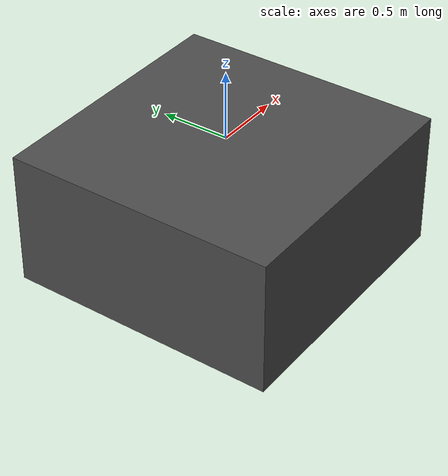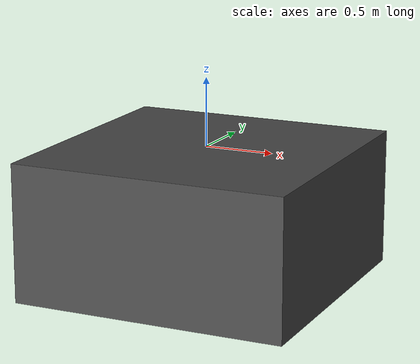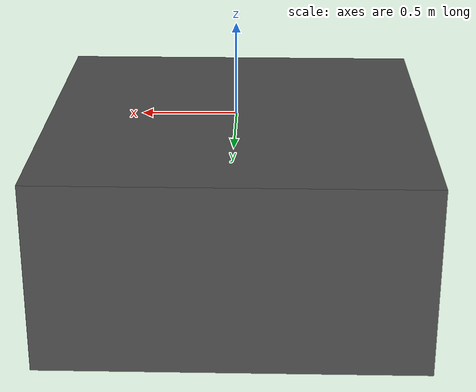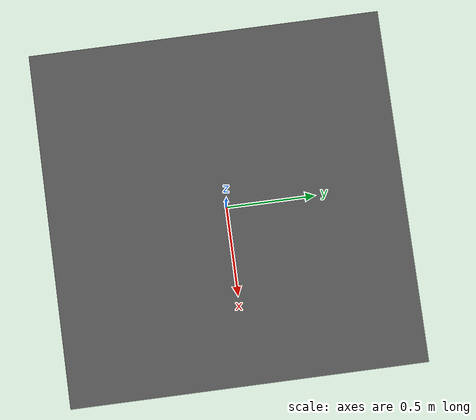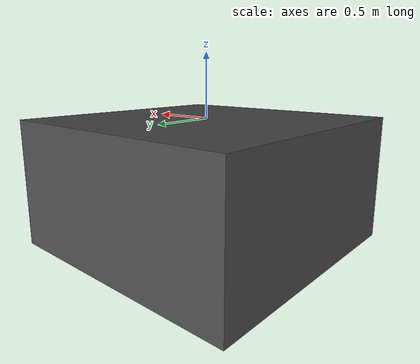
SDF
<?xml version="1.0"?>
<sdf version="1.7">
  <!-- This model is used for testing generation of voxel-based environment
  models and planning on voxelized environments. -->
  <model name="ground_plane_box">
    <link name="ground_plane_box">
      <pose>0 0 0 0 0 0</pose>
      <inertial>
        <!--These values are arbitrary. This is not intended for simulation.-->
        <mass>1.0</mass>
        <inertia>
          <ixx>1.0</ixx>
          <ixy>0</ixy>
          <ixz>0</ixz>
          <iyy>1.0</iyy>
          <iyz>0</iyz>
          <izz>1.0</izz>
        </inertia>
      </inertial>
      <visual name="ground_plane_box_visual">
        <pose>0 0 -0.5 0 0 0</pose>
        <geometry>
          <box>
            <size>2.0 2.0 1.0</size>
          </box>
        </geometry>
        <material>
          <diffuse>0.3 0.3 0.3 1</diffuse>
        </material>
      </visual>
      <collision name="ground_plane_box_collision">
        <pose>0 0 -0.5 0 0 0</pose>
        <geometry>
          <box>
            <size>2.0 2.0 1.0</size>
          </box>
        </geometry>
      </collision>
    </link>
  </model>
</sdf>
